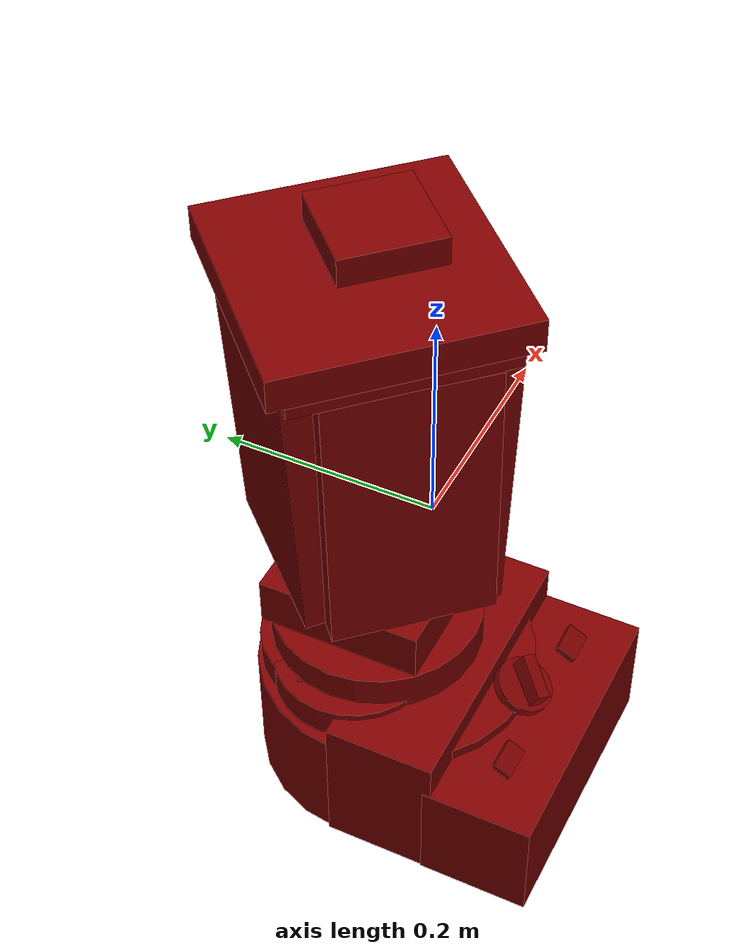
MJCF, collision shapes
<?xml version='1.0' encoding='UTF-8'?>
<mujoco model="model">
  <option timestep="0.0005" gravity="0.0 0.0 -9.81"/>
  <compiler angle="radian"/>
  <asset>
    <mesh file="visuals/Blade001.obj" name="Blade001_vis"/>
    <mesh file="visuals/Body001.obj" name="Body001_vis"/>
    <mesh file="visuals/Button001.obj" name="Button001_vis"/>
    <mesh file="visuals/Button002.obj" name="Button002_vis"/>
    <mesh file="visuals/Jug001.obj" name="Jug001_vis"/>
    <mesh file="visuals/Jug001_Clear.obj" name="Jug001_Clear_vis"/>
    <mesh file="visuals/Knob001.obj" name="Knob001_vis"/>
    <mesh file="visuals/Lid001.obj" name="Lid001_vis"/>
    <texture file="visuals/T_BC001.png" name="Body001_material" type="2d"/>
    <material name="Body001_material" rgba="1 1 1 1.0" texture="Body001_material" shininess="0.141421377658844" specular="0.5"/>
    <texture file="visuals/T_BC001.png" name="Button001_material" type="2d"/>
    <material name="Button001_material" rgba="1 1 1 1.0" texture="Button001_material" shininess="0.141421377658844" specular="0.5"/>
    <texture file="visuals/T_BC001.png" name="Button002_material" type="2d"/>
    <material name="Button002_material" rgba="1 1 1 1.0" texture="Button002_material" shininess="0.141421377658844" specular="0.5"/>
    <texture file="visuals/T_BC001.png" name="Jug001_material" type="2d"/>
    <material name="Jug001_material" rgba="1 1 1 1.0" texture="Jug001_material" shininess="0.141421377658844" specular="0.5"/>
    <texture file="visuals/T_BC001.png" name="Blade001_material" type="2d"/>
    <material name="Blade001_material" rgba="1 1 1 1.0" texture="Blade001_material" shininess="0.141421377658844" specular="0.7"/>
    <texture file="visuals/T_BC001.png" name="Jug001_Clear_material" type="2d"/>
    <material name="Jug001_Clear_material" rgba="1 1 1 0.699999988079071" texture="Jug001_Clear_material" shininess="0.8264863044023514" specular="0.7872340339187474"/>
    <texture file="visuals/T_BC001.png" name="Knob001_material" type="2d"/>
    <material name="Knob001_material" rgba="1 1 1 1.0" texture="Knob001_material" shininess="0.141421377658844" specular="0.5"/>
    <texture file="visuals/T_BC001.png" name="Lid001_material" type="2d"/>
    <material name="Lid001_material" rgba="1 1 1 1.0" texture="Lid001_material" shininess="0.141421377658844" specular="0.5"/>
  </asset>
  <default>
    <default class="visual">
      <geom conaffinity="0" contype="0" group="1" type="mesh"/>
    </default>
    <default class="collision">
      <geom group="0" rgba="0.5 0 0 0.5"/>
    </default>
    <default class="spawn">
      <geom group="0" rgba="1 1 1 0.5" contype="0" conaffinity="0"/>
      <site group="0" rgba="1 1 1 0.5"/>
    </default>
    <default class="region">
      <geom group="1" conaffinity="0" contype="0" rgba="0 1 0 0"/>
    </default>
  </default>
  <worldbody>
    <body>
      <body name="object">
        <geom mesh="Body001_vis" type="mesh" solimp="0.998 0.998 0.001" solref="0.001 1" friction="0.95 0.3 0.1" class="visual" material="Body001_material"/>
        <geom class="collision" type="box" pos="-0.017430 -0.019083 -0.225534" size="0.12968866527080536 0.05051147937774658 0.07040132582187653" quat="1.0 0.0 0.0 0.0" density="1000.0"/>
        <geom class="collision" type="box" pos="-0.018229 -0.112547 -0.242249" size="0.1301640272140503 0.05060109868645668 0.053686242550611496" quat="1.0 0.0 0.0 0.0" density="1000.0"/>
        <geom class="collision" type="cylinder" pos="-0.017450 0.045084 -0.158408" size="0.09668879210948944 0.03932907059788704" quat="1.0 0.0 0.0 0.0" density="1000.0"/>
        <geom class="collision" type="cylinder" pos="-0.017290 0.025010 -0.236925" size="0.1277042180299759 0.059179969131946564" quat="1.0 0.0 0.0 0.0" density="1000.0"/>
        <geom class="collision" type="cylinder" pos="-0.060517 0.047140 -0.182213" size="0.07243027538061142 0.033565230667591095" quat="1.0 0.0 0.0 0.0" density="1000.0"/>
        <geom class="collision" type="cylinder" pos="-0.011410 0.078064 -0.182213" size="0.07243027538061142 0.033565230667591095" quat="1.0 0.0 0.0 0.0" density="1000.0"/>
        <geom class="collision" type="cylinder" pos="0.014008 0.066267 -0.182213" size="0.07243027538061142 0.033565230667591095" quat="1.0 0.0 0.0 0.0" density="1000.0"/>
        <geom class="collision" type="cylinder" pos="0.033727 0.039980 -0.182213" size="0.07243027538061142 0.033565230667591095" quat="1.0 0.0 0.0 0.0" density="1000.0"/>
        <geom class="collision" type="cylinder" pos="-0.040736 0.071241 -0.182213" size="0.07243027538061142 0.033565230667591095" quat="1.0 0.0 0.0 0.0" density="1000.0"/>
        <body name="Button001">
          <joint axis="0.0 0.4226183593273163 -0.9063079357147217" pos="0.057515 -0.115538 -0.178462" limited="true" name="Button001_joint" range="0.0 0.003" type="slide" damping="1" frictionloss="1" armature=".01" stiffness="0.5" springref="-0.5"/>
          <geom mesh="Button001_vis" type="mesh" solimp="0.998 0.998 0.001" solref="0.001 1" friction="0.95 0.3 0.1" class="visual" material="Button001_material"/>
          <geom class="collision" type="box" pos="0.057034 -0.116049 -0.177205" size="0.015535996295511723 0.009651546366512775 0.0032402225770056248" quat="0.969495415687561 0.24482029676437378 0.009978671558201313 0.00648893415927887" density="1000.0"/>
        </body>
        <body name="Button002">
          <joint axis="-5.6152605808054936e-18 0.4226183593273163 -0.9063079357147217" pos="-0.088669 -0.115586 -0.178454" limited="true" name="Button002_joint" range="0.0 0.003" type="slide" damping="1" frictionloss="1" armature=".01" stiffness="0.5" springref="-0.5"/>
          <geom mesh="Button002_vis" type="mesh" solimp="0.998 0.998 0.001" solref="0.001 1" friction="0.95 0.3 0.1" class="visual" material="Button002_material"/>
          <geom class="collision" type="box" pos="-0.088990 -0.117130 -0.177297" size="0.015483303926885128 0.008930300362408161 0.002988857915624976" quat="0.9694134593009949 0.2453550100326538 -0.0021198231261223555 -0.005826357286423445" density="1000.0"/>
        </body>
        <body name="Jug001">
          <joint axis="0.0 0.0 1.0" pos="0.030046 0.046993 0.048085" limited="true" name="Jug001_joint" range="0.0 0.05" type="slide" damping="1" frictionloss="1" armature=".01" stiffness="0.05"/>
          <geom mesh="Jug001_vis" type="mesh" solimp="0.998 0.998 0.001" solref="0.001 1" friction="0.95 0.3 0.1" class="visual" material="Jug001_material"/>
          <geom class="collision" type="box" pos="0.100860 0.047210 0.190909" size="0.018853865563869476 0.016030292958021164 0.010851765982806683" quat="1.0 0.0 0.0 0.0" density="1000.0"/>
          <geom class="collision" type="box" pos="0.091307 0.047045 0.020147" size="0.017213819548487663 0.013093107379972935 0.014991587027907372" quat="1.0 0.0 0.0 0.0" density="1000.0"/>
          <geom class="collision" type="box" pos="0.136115 0.047210 0.134326" size="0.015919027850031853 0.016030292958021164 0.06743469834327698" quat="1.0 0.0 0.0 0.0" density="1000.0"/>
          <geom class="collision" type="box" pos="0.120939 0.046923 0.042191" size="0.02517963945865631 0.014718655496835709 0.014991587027907372" quat="0.917942225933075 0.0 -0.39671412110328674 0.0" density="1000.0"/>
          <geom class="collision" type="box" pos="-0.016778 0.046438 -0.084650" size="0.07544902712106705 0.07496495544910431 0.022760016843676567" quat="1.0 0.0 0.0 0.0" density="1000.0"/>
          <body name="Blade001">
            <joint axis="0.0 0.0 1.0" pos="-0.016947 0.046980 -0.039208" limited="false" name="Blade001_joint" range="0 360" type="hinge" damping="1" frictionloss="1" armature=".01" stiffness="0.05"/>
            <geom mesh="Blade001_vis" type="mesh" solimp="0.998 0.998 0.001" solref="0.001 1" friction="0.95 0.3 0.1" class="visual" material="Blade001_material"/>
            <geom class="collision" type="box" pos="-0.018261 0.047729 -0.044208" size="0.03555736690759659 0.011566841043531895 0.005374473053961992" quat="1.0 0.0 0.0 0.0" density="1000.0"/>
            <geom class="collision" type="box" pos="-0.016602 0.024116 -0.043579" size="0.010374368168413639 0.011566841043531895 0.0021979371085762978" quat="1.0 0.0 0.0 0.0" density="1000.0"/>
            <geom class="collision" type="box" pos="-0.016602 0.071079 -0.043579" size="0.010374368168413639 0.011566841043531895 0.0021979371085762978" quat="1.0 0.0 0.0 0.0" density="1000.0"/>
            <geom class="collision" type="box" pos="-0.016602 0.096078 -0.050619" size="0.010374368168413639 0.01796589232981205 0.0011200293665751815" quat="0.9813559651374817 -0.19219909608364105 -0.0 0.0" density="1000.0"/>
            <geom class="collision" type="box" pos="-0.016602 -0.002356 -0.050619" size="0.010374368168413639 0.01796589232981205 0.0011200293665751815" quat="0.9813559651374817 0.19219909608364105 0.0 0.0" density="1000.0"/>
            <geom class="collision" type="box" pos="-0.063407 0.046559 -0.030946" size="0.013877377845346928 0.0055869086645543575 0.0011185097973793745" quat="0.9225588440895081 0.0 0.3858564496040344 0.0" density="1000.0"/>
            <geom class="collision" type="box" pos="0.029655 0.046559 -0.030946" size="0.013877377845346928 0.0055869086645543575 0.0011185097973793745" quat="0.9225588440895081 0.0 -0.3858564496040344 0.0" density="1000.0"/>
          </body>
          <body name="Jug001_Clear">
            <geom class="region" name="reg_int" type="box" pos="-0.0157005 0.046801499999999996 0.0927245" size="0.07900750000000001 0.0771995 0.1506645"/>
            <geom mesh="Jug001_Clear_vis" type="mesh" solimp="0.998 0.998 0.001" solref="0.001 1" friction="0.95 0.3 0.1" class="visual" material="Jug001_Clear_material"/>
            <geom class="collision" type="box" pos="0.029753 -0.013887 0.075445" size="0.0721902921795845 0.012196497060358524 0.13525761663913727" quat="0.9156303405761719 0.017245326191186905 0.007563500199466944 0.40157994627952576" density="1000.0"/>
            <geom class="collision" type="box" pos="-0.068120 0.111119 0.076105" size="0.07833114266395569 0.012838413007557392 0.13396118581295013" quat="0.914870023727417 -0.019253043457865715 -0.032436903566122055 0.4019826352596283" density="1000.0"/>
            <geom class="collision" type="box" pos="-0.072240 -0.012321 0.076122" size="0.0721672773361206 0.012000609189271927 0.13558508455753326" quat="0.4066144526004791 -0.017574811354279518 -0.011982575058937073 0.9133521914482117" density="1000.0"/>
            <geom class="collision" type="box" pos="0.032488 0.105325 0.075995" size="0.07356119900941849 0.010724218562245369 0.13674744963645935" quat="0.4069778621196747 -0.0019201186951249838 0.007655052468180656 0.9134039282798767" density="1000.0"/>
          </body>
        </body>
        <body name="Knob001">
          <joint axis="0.0 0.42261821031570435 -0.9063078165054321" pos="-0.014931 -0.103404 -0.161579" limited="true" name="Knob001_joint" range="0.0 4.886921905584122" type="hinge" damping="0.05" armature="0.001"/>
          <geom mesh="Knob001_vis" type="mesh" solimp="0.998 0.998 0.001" solref="0.001 1" friction="0.95 0.3 0.1" class="visual" material="Knob001_material"/>
          <geom class="collision" type="cylinder" pos="-0.014817 -0.098861 -0.168658" size="0.026953713968396187 0.004453835543245077" quat="0.9746725559234619 0.22363674640655518 -4.965733631128541e-17 -1.5369836527898264e-24" density="1000.0"/>
          <geom class="collision" type="box" pos="-0.014537 -0.105548 -0.157968" size="0.0061064972542226315 0.020651644095778465 0.011173461563885212" quat="0.9101381897926331 0.2285355180501938 0.056584760546684265 -0.34090790152549744" density="1000.0"/>
        </body>
        <body name="Lid001">
          <joint axis="0.0 0.0 1.0" pos="-0.021200 0.047131 0.263291" limited="true" name="Lid001_joint" range="0.0 0.08" type="slide" damping="1" frictionloss="1" armature=".01" stiffness="0.05"/>
          <geom mesh="Lid001_vis" type="mesh" solimp="0.998 0.998 0.001" solref="0.001 1" friction="0.95 0.3 0.1" class="visual" material="Lid001_material"/>
          <geom class="collision" type="box" pos="-0.031922 0.047260 0.255465" size="0.10757600516080856 0.10634037852287292 0.014792152680456638" quat="0.9254322648048401 0.0 0.0 0.3789130747318268" density="1000.0"/>
          <geom class="collision" type="box" pos="-0.026747 0.046096 0.227758" size="0.0941307470202446 0.09299993515014648 0.01283076498657465" quat="0.9254322648048401 0.0 0.0 0.3789130747318268" density="1000.0"/>
          <geom class="collision" type="box" pos="-0.007574 0.048269 0.284052" size="0.04403645172715187 0.044515419751405716 0.012560202740132809" quat="0.9254322648048401 0.0 0.0 0.3789130747318268" density="1000.0"/>
        </body>
        <geom class="region" name="reg_main" type="box" pos="-0.021296000000000002 0.0 5.000000000143778e-07" size="0.132711 0.165068 0.2958515"/>
      </body>
    </body>
  </worldbody>
  <actuator>
    <motor name="Button001_joint_actuator" joint="Button001_joint" gear="0.3"/>
    <motor name="Button002_joint_actuator" joint="Button002_joint" gear="0.3"/>
    <motor name="Jug001_joint_actuator" joint="Jug001_joint" gear="300"/>
    <motor name="Knob001_joint_actuator" joint="Knob001_joint" gear="5"/>
    <motor name="Lid001_joint_actuator" joint="Lid001_joint" gear="50"/>
    <motor name="Blade001_joint_actuator" joint="Blade001_joint" gear="50"/>
  </actuator>
</mujoco>
